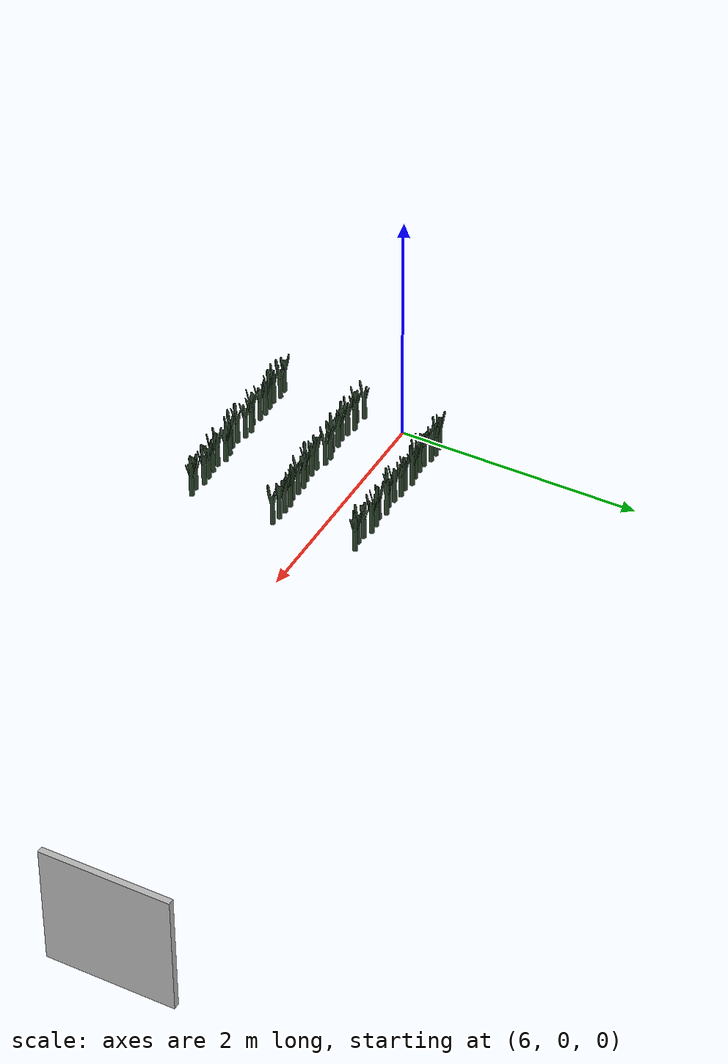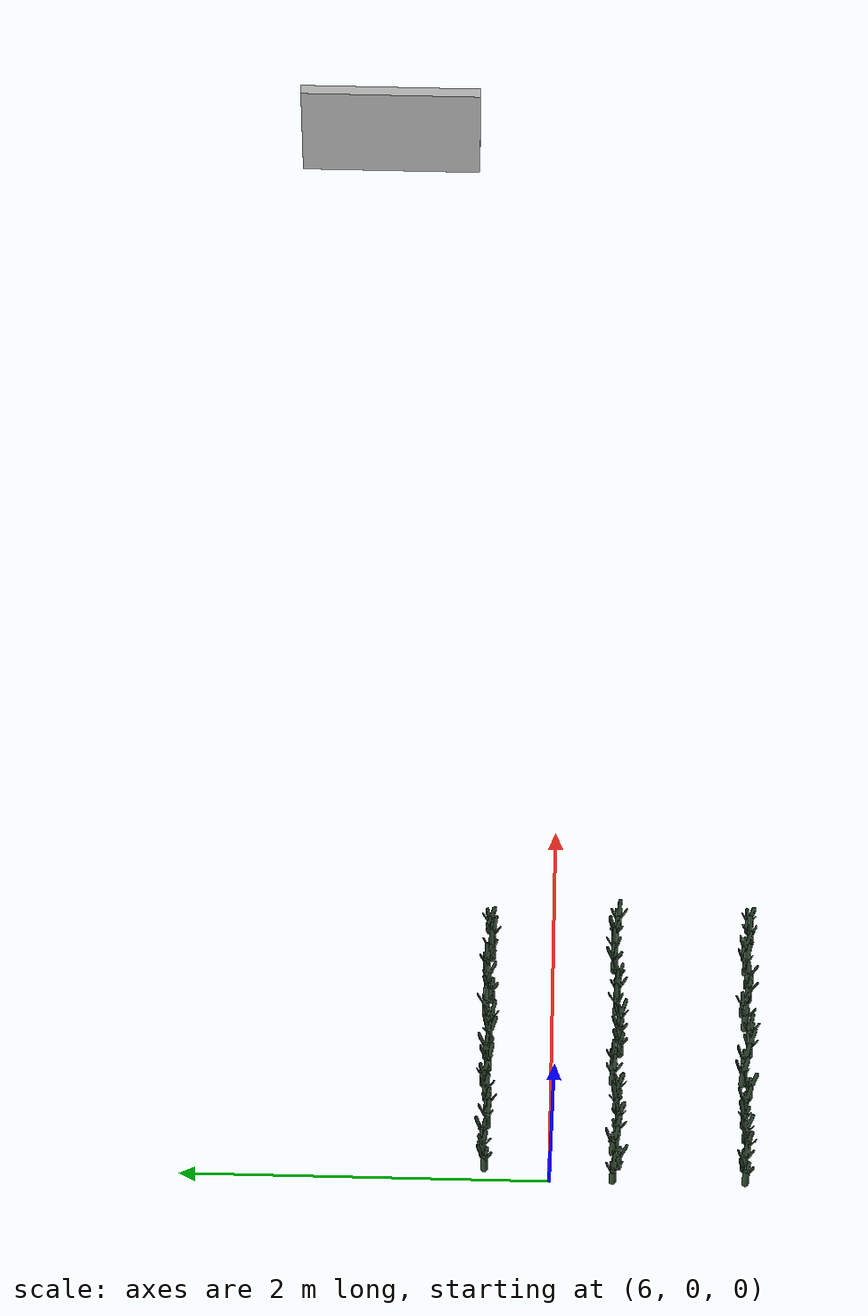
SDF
<sdf version="1.6">
 <world name="default">
  <include><uri>model://Sign</uri><pose>12 1 0 0 0 0</pose><static>1</static></include>
  <include><uri>model://Leek</uri><pose>6.060000 0.352915 0.15 0 0 26.235635</pose><static>0</static></include>
  <include><uri>model://Leek</uri><pose>6.140000 0.364249 0.15 0 0 128.239973</pose><static>0</static></include>
  <include><uri>model://Leek</uri><pose>6.220000 0.364790 0.15 0 0 133.108129</pose><static>0</static></include>
  <include><uri>model://Leek</uri><pose>6.300000 0.342994 0.15 0 0 -63.056666</pose><static>0</static></include>
  <include><uri>model://Leek</uri><pose>6.380000 0.344721 0.15 0 0 -47.515098</pose><static>0</static></include>
  <include><uri>model://Leek</uri><pose>6.460000 0.353792 0.15 0 0 34.128470</pose><static>0</static></include>
  <include><uri>model://Leek</uri><pose>6.540000 0.367715 0.15 0 0 159.432628</pose><static>0</static></include>
  <include><uri>model://Leek</uri><pose>6.620000 0.347144 0.15 0 0 -25.706161</pose><static>0</static></include>
  <include><uri>model://Leek</uri><pose>6.700000 0.356430 0.15 0 0 57.874359</pose><static>0</static></include>
  <include><uri>model://Leek</uri><pose>6.780000 0.341517 0.15 0 0 -76.350303</pose><static>0</static></include>
  <include>
   <uri>model://Leek</uri>
   <pose>6.860000 0.335800 0.15 0 0 -127.796868</pose>
   <static>0</static>
  </include>
  <include><uri>model://Leek</uri><pose>6.940000 0.361874 0.15 0 0 106.866526</pose><static>0</static></include>
  <include>
   <uri>model://Leek</uri>
   <pose>7.020000 0.336868 0.15 0 0 -118.192043</pose>
   <static>0</static>
  </include>
  <include><uri>model://Leek</uri><pose>7.100000 0.356672 0.15 0 0 60.046818</pose><static>0</static></include>
  <include><uri>model://Leek</uri><pose>7.180000 0.361695 0.15 0 0 105.254363</pose><static>0</static></include>
  <include>
   <uri>model://Leek</uri>
   <pose>7.260000 0.336049 0.15 0 0 -125.560083</pose>
   <static>0</static>
  </include>
  <include>
   <uri>model://Leek</uri>
   <pose>7.340000 0.333719 0.15 0 0 -146.531171</pose>
   <static>0</static>
  </include>
  <include><uri>model://Leek</uri><pose>7.420000 0.350244 0.15 0 0 2.195081</pose><static>0</static></include>
  <include><uri>model://Leek</uri><pose>6.005438 -0.339021 0.15 0 0 98.806606</pose><static>0</static></include>
  <include>
   <uri>model://Leek</uri>
   <pose>6.085438 -0.366904 0.15 0 0 -152.131901</pose>
   <static>0</static>
  </include>
  <include>
   <uri>model://Leek</uri>
   <pose>6.165438 -0.337498 0.15 0 0 112.521274</pose>
   <static>0</static>
  </include>
  <include>
   <uri>model://Leek</uri>
   <pose>6.245438 -0.356687 0.15 0 0 -60.185480</pose>
   <static>0</static>
  </include>
  <include>
   <uri>model://Leek</uri>
   <pose>6.325438 -0.365121 0.15 0 0 -136.085896</pose>
   <static>0</static>
  </include>
  <include>
   <uri>model://Leek</uri>
   <pose>6.405438 -0.352035 0.15 0 0 -18.312082</pose>
   <static>0</static>
  </include>
  <include>
   <uri>model://Leek</uri>
   <pose>6.485438 -0.360913 0.15 0 0 -98.218135</pose>
   <static>0</static>
  </include>
  <include>
   <uri>model://Leek</uri>
   <pose>6.565438 -0.331350 0.15 0 0 167.851214</pose>
   <static>0</static>
  </include>
  <include>
   <uri>model://Leek</uri>
   <pose>6.645438 -0.333424 0.15 0 0 149.188385</pose>
   <static>0</static>
  </include>
  <include>
   <uri>model://Leek</uri>
   <pose>6.725438 -0.366642 0.15 0 0 -149.782256</pose>
   <static>0</static>
  </include>
  <include>
   <uri>model://Leek</uri>
   <pose>6.805438 -0.363143 0.15 0 0 -118.286688</pose>
   <static>0</static>
  </include>
  <include>
   <uri>model://Leek</uri>
   <pose>6.885438 -0.365615 0.15 0 0 -140.532233</pose>
   <static>0</static>
  </include>
  <include><uri>model://Leek</uri><pose>6.965438 -0.345098 0.15 0 0 44.120118</pose><static>0</static></include>
  <include><uri>model://Leek</uri><pose>7.045438 -0.348086 0.15 0 0 17.228401</pose><static>0</static></include>
  <include>
   <uri>model://Leek</uri>
   <pose>7.125438 -0.352717 0.15 0 0 -24.453942</pose>
   <static>0</static>
  </include>
  <include>
   <uri>model://Leek</uri>
   <pose>7.205438 -0.330303 0.15 0 0 177.276380</pose>
   <static>0</static>
  </include>
  <include>
   <uri>model://Leek</uri>
   <pose>7.285438 -0.330433 0.15 0 0 176.104963</pose>
   <static>0</static>
  </include>
  <include>
   <uri>model://Leek</uri>
   <pose>7.365438 -0.333146 0.15 0 0 151.686768</pose>
   <static>0</static>
  </include>
  <include><uri>model://Leek</uri><pose>7.445438 -0.346709 0.15 0 0 29.619107</pose><static>0</static></include>
  <include>
   <uri>model://Leek</uri>
   <pose>6.009162 -1.054072 0.15 0 0 -36.651947</pose>
   <static>0</static>
  </include>
  <include><uri>model://Leek</uri><pose>6.089162 -1.044615 0.15 0 0 48.461145</pose><static>0</static></include>
  <include>
   <uri>model://Leek</uri>
   <pose>6.169162 -1.060896 0.15 0 0 -98.063969</pose>
   <static>0</static>
  </include>
  <include>
   <uri>model://Leek</uri>
   <pose>6.249162 -1.051661 0.15 0 0 -14.945123</pose>
   <static>0</static>
  </include>
  <include><uri>model://Leek</uri><pose>6.329162 -1.042951 0.15 0 0 63.443857</pose><static>0</static></include>
  <include><uri>model://Leek</uri><pose>6.409162 -1.045888 0.15 0 0 37.008092</pose><static>0</static></include>
  <include>
   <uri>model://Leek</uri>
   <pose>6.489162 -1.067559 0.15 0 0 -158.027828</pose>
   <static>0</static>
  </include>
  <include>
   <uri>model://Leek</uri>
   <pose>6.569162 -1.033301 0.15 0 0 150.287149</pose>
   <static>0</static>
  </include>
  <include><uri>model://Leek</uri><pose>6.649162 -1.040288 0.15 0 0 87.409059</pose><static>0</static></include>
  <include>
   <uri>model://Leek</uri>
   <pose>6.729162 -1.066305 0.15 0 0 -146.741038</pose>
   <static>0</static>
  </include>
  <include>
   <uri>model://Leek</uri>
   <pose>6.809162 -1.068355 0.15 0 0 -165.192780</pose>
   <static>0</static>
  </include>
  <include><uri>model://Leek</uri><pose>6.889162 -1.042695 0.15 0 0 65.749292</pose><static>0</static></include>
  <include>
   <uri>model://Leek</uri>
   <pose>6.969162 -1.030934 0.15 0 0 171.592966</pose>
   <static>0</static>
  </include>
  <include>
   <uri>model://Leek</uri>
   <pose>7.049162 -1.058771 0.15 0 0 -78.940933</pose>
   <static>0</static>
  </include>
  <include>
   <uri>model://Leek</uri>
   <pose>7.129162 -1.053848 0.15 0 0 -34.628961</pose>
   <static>0</static>
  </include>
  <include><uri>model://Leek</uri><pose>7.209162 -1.044448 0.15 0 0 49.964182</pose><static>0</static></include>
  <include>
   <uri>model://Leek</uri>
   <pose>7.289162 -1.038385 0.15 0 0 104.530872</pose>
   <static>0</static>
  </include>
  <include>
   <uri>model://Leek</uri>
   <pose>7.369162 -1.065348 0.15 0 0 -138.135578</pose>
   <static>0</static>
  </include>
  <include>
   <uri>model://Leek</uri>
   <pose>7.449162 -1.055346 0.15 0 0 -48.109535</pose>
   <static>0</static>
  </include>
 </world>
</sdf>
